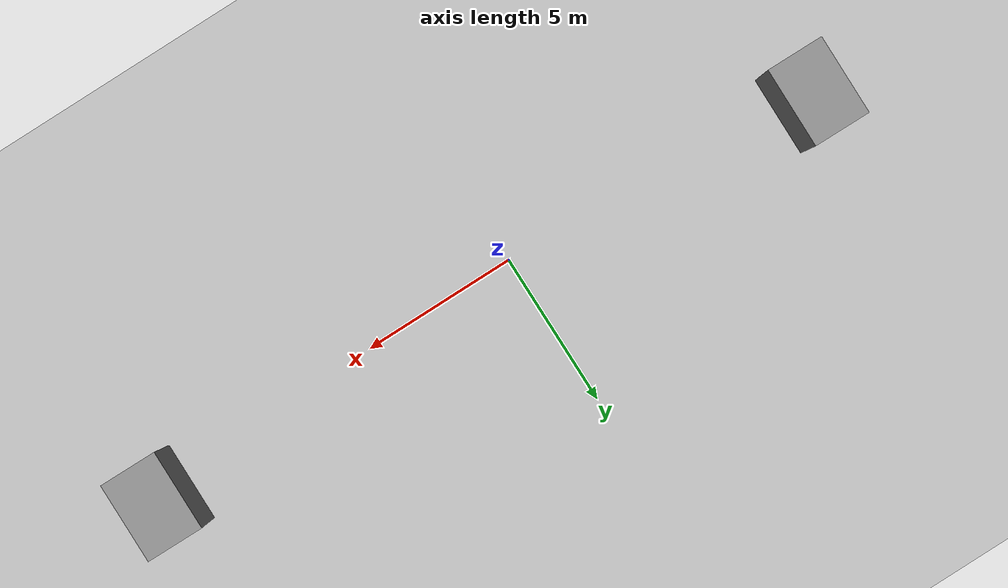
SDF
<sdf version="1.6">
 <world name="default">
  <light name="sun" type="directional">
   <pose>0 0 10 0 -0 0</pose>
   <diffuse>0.8 0.8 0.8 1</diffuse>
   <specular>0.2 0.2 0.2 1</specular>
   <attenuation>
    <range>1000</range>
    <constant>0.9</constant>
    <linear>0.01</linear>
    <quadratic>0.001</quadratic>
   </attenuation>
   <direction>-0.5 0.1 -0.9</direction>
  </light>
  <scene>
   <sky><clouds><speed>12</speed></clouds></sky>
   <ambient>0.4 0.4 0.4 1</ambient>
   <background>0 0 0.7 1</background>
   <shadows>1</shadows>
  </scene>
  <model name="ground_plane">
   <static>1</static>
   <link name="link">
    <collision name="collision">
     <geometry><plane><normal>0 0 1</normal><size>100 100</size></plane></geometry>
     <surface>
      <contact><collide_bitmask>65535</collide_bitmask></contact>
      <friction><ode><mu>100</mu><mu2>50</mu2></ode></friction>
     </surface>
    </collision>
    <visual name="visual">
     <cast_shadows>0</cast_shadows>
     <geometry><plane><normal>0 0 1</normal><size>100 100</size></plane></geometry>
     <material>
      <script><uri>file://media/materials/scripts/gazebo.material</uri><name>Gazebo/Grey</name></script>
     </material>
    </visual>
   </link>
  </model>
  <physics name="default_physics" default="0" type="ode">
   <ode>
    <solver>
     <type>quick</type>
     <iters>10</iters>
     <sor>1.3</sor>
     <use_dynamic_moi_rescaling>0</use_dynamic_moi_rescaling>
    </solver>
    <constraints>
     <cfm>0</cfm>
     <erp>0.2</erp>
     <contact_max_correcting_vel>100</contact_max_correcting_vel>
     <contact_surface_layer>0.001</contact_surface_layer>
    </constraints>
   </ode>
   <max_step_size>0.004</max_step_size>
   <real_time_factor>1</real_time_factor>
   <real_time_update_rate>250</real_time_update_rate>
  </physics>
  <gravity>0 0 -9.8066</gravity>
  <magnetic_field>6e-06 2.3e-05 -4.2e-05</magnetic_field>
  <atmosphere type="adiabatic"/>
  <scene><ambient>0.4 0.4 0.4 1</ambient><background>0.7 0.7 0.7 1</background><shadows>1</shadows></scene>
  <audio><device>default</device></audio>
  <spherical_coordinates>
   <surface_model>EARTH_WGS84</surface_model>
   <latitude_deg>0</latitude_deg>
   <longitude_deg>0</longitude_deg>
   <elevation>0</elevation>
   <heading_deg>0</heading_deg>
  </spherical_coordinates>
  <model name="unit_box">
   <pose>-10.1768 0.721845 3.86882 -1e-05 -4e-06 -0.006763</pose>
   <link name="link">
    <inertial>
     <mass>1</mass>
     <inertia>
      <ixx>0.166667</ixx>
      <ixy>0</ixy>
      <ixz>0</ixz>
      <iyy>0.166667</iyy>
      <iyz>0</iyz>
      <izz>0.166667</izz>
     </inertia>
    </inertial>
    <collision name="collision"><geometry><box><size>1.83776 2.60766 7.73774</size></box></geometry></collision>
    <visual name="visual">
     <geometry><box><size>1.83776 2.60766 7.73774</size></box></geometry>
     <material>
      <script><name>Gazebo/Grey</name><uri>file://media/materials/scripts/gazebo.material</uri></script>
     </material>
    </visual>
   </link>
  </model>
  <model name="unit_box_clone">
   <pose>12.6598 0.47361 3.86882 1e-05 -4e-06 -0.006091</pose>
   <link name="link">
    <inertial>
     <mass>1</mass>
     <inertia>
      <ixx>0.166667</ixx>
      <ixy>0</ixy>
      <ixz>0</ixz>
      <iyy>0.166667</iyy>
      <iyz>0</iyz>
      <izz>0.166667</izz>
     </inertia>
    </inertial>
    <collision name="collision"><geometry><box><size>1.83776 2.60766 7.73774</size></box></geometry></collision>
    <visual name="visual">
     <geometry><box><size>1.83776 2.60766 7.73774</size></box></geometry>
     <material>
      <script><name>Gazebo/Grey</name><uri>file://media/materials/scripts/gazebo.material</uri></script>
     </material>
    </visual>
   </link>
  </model>
 </world>
</sdf>
